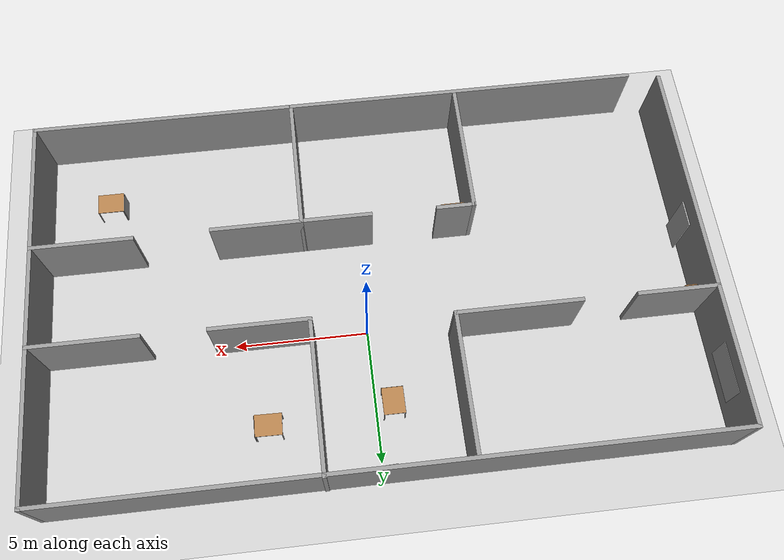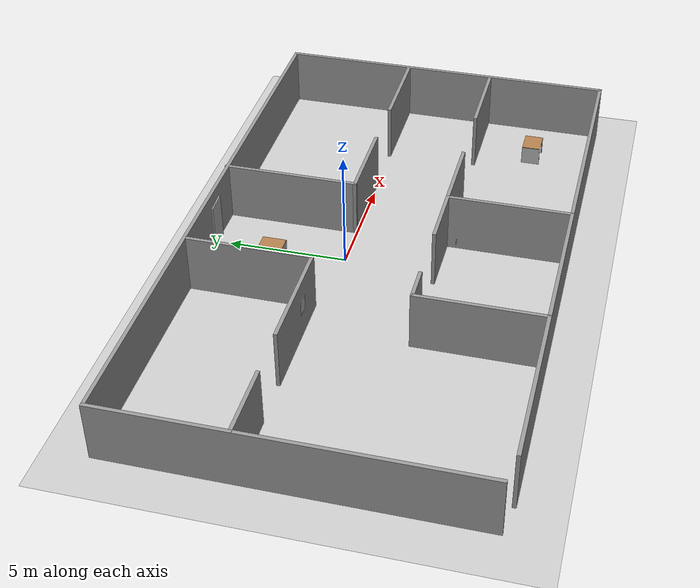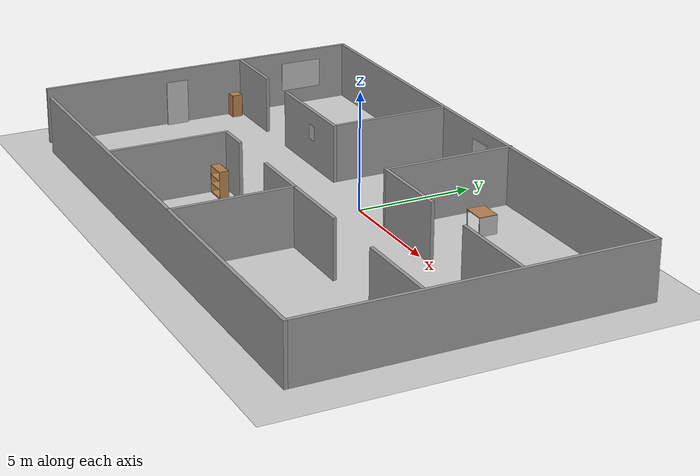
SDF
<sdf version="1.6">
 <world name="default">
  <light name="sun" type="directional">
   <pose>0 0 10 0 -0 0</pose>
   <diffuse>0.8 0.8 0.8 1</diffuse>
   <specular>0.2 0.2 0.2 1</specular>
   <attenuation>
    <range>1000</range>
    <constant>0.9</constant>
    <linear>0.01</linear>
    <quadratic>0.001</quadratic>
   </attenuation>
   <direction>-0.5 0.1 -0.9</direction>
  </light>
  <model name="ground_plane">
   <static>1</static>
   <link name="link">
    <collision name="collision">
     <geometry><plane><normal>0 0 1</normal><size>100 100</size></plane></geometry>
     <surface>
      <contact><collide_bitmask>65535</collide_bitmask></contact>
      <friction><ode><mu>100</mu><mu2>50</mu2></ode></friction>
     </surface>
    </collision>
    <visual name="visual">
     <cast_shadows>0</cast_shadows>
     <geometry><plane><normal>0 0 1</normal><size>100 100</size></plane></geometry>
     <material>
      <script><uri>file://media/materials/scripts/gazebo.material</uri><name>Gazebo/Grey</name></script>
     </material>
    </visual>
   </link>
  </model>
  <physics type="ode">
   <ode>
    <solver><type>quick</type><iters>20</iters><sor>1</sor></solver>
    <constraints>
     <cfm>0</cfm>
     <erp>0.2</erp>
     <contact_max_correcting_vel>100</contact_max_correcting_vel>
     <contact_surface_layer>0</contact_surface_layer>
    </constraints>
   </ode>
   <max_step_size>0.001</max_step_size>
   <real_time_update_rate>1000</real_time_update_rate>
  </physics>
  <scene><ambient>0.4 0.4 0.4 1</ambient><background>0.7 0.7 0.7 1</background><shadows>1</shadows></scene>
  <audio><device>default</device></audio>
  <spherical_coordinates>
   <surface_model>EARTH_WGS84</surface_model>
   <latitude_deg>0</latitude_deg>
   <longitude_deg>0</longitude_deg>
   <elevation>0</elevation>
   <heading_deg>0</heading_deg>
  </spherical_coordinates>
  <model name="table">
   <link name="wallWithREEMphoto_body">
    <inertial>
     <mass>4</mass>
     <inertia><ixx>1</ixx><ixy>0</ixy><ixz>0</ixz><iyy>1</iyy><iyz>0</iyz><izz>1</izz></inertia>
    </inertial>
    <collision name="collision"><geometry><box><size>0.05 1 2</size></box></geometry></collision>
    <visual name="visual">
     <geometry><box><size>0.05 1 2</size></box></geometry>
     <material>
      <script>
       <uri>model://wall_with_reem_photo/material/scripts</uri>
       <uri>model://wall_with_reem_photo/material/textures</uri>
       <name>Custom/REEM_photo0</name>
      </script>
     </material>
    </visual>
   </link>
   <pose>-12.5516 -2.77072 1 1e-06 7e-06 1.1e-05</pose>
  </model>
  <model name="cabinet">
   <static>1</static>
   <link name="cabinet_bottom_plate">
    <inertial>
     <pose>0 0 -1 0 -0 0</pose>
     <inertia><ixx>2.05</ixx><ixy>0</ixy><ixz>0</ixz><iyy>2.05</iyy><iyz>0</iyz><izz>2.05</izz></inertia>
     <mass>25</mass>
    </inertial>
    <collision name="cabinet_bottom_plate_geom">
     <pose>0 0 0.01 0 -0 0</pose>
     <geometry><box><size>0.45 0.45 0.02</size></box></geometry>
    </collision>
    <visual name="cabinet_bottom_plate_geom_visual">
     <pose>0 0 0.01 0 -0 0</pose>
     <geometry><box><size>0.45 0.45 0.02</size></box></geometry>
     <material>
      <script><uri>file://media/materials/scripts/gazebo.material</uri><name>Gazebo/Wood</name></script>
     </material>
    </visual>
    <collision name="cabinet_bottom_plate_geom_cabinet_back_plate">
     <pose>0.235 0 0.51 0 -0 0</pose>
     <geometry><box><size>0.02 0.45 1.02</size></box></geometry>
    </collision>
    <visual name="cabinet_bottom_plate_geom_cabinet_back_plate_visual">
     <pose>0.235 0 0.51 0 -0 0</pose>
     <geometry><box><size>0.02 0.45 1.02</size></box></geometry>
     <material>
      <script><uri>file://media/materials/scripts/gazebo.material</uri><name>Gazebo/Wood</name></script>
     </material>
    </visual>
    <collision name="cabinet_bottom_plate_geom_cabinet_left_plate">
     <pose>0 0.235 0.51 0 -0 0</pose>
     <geometry><box><size>0.45 0.02 1.02</size></box></geometry>
    </collision>
    <visual name="cabinet_bottom_plate_geom_cabinet_left_plate_visual">
     <pose>0 0.235 0.51 0 -0 0</pose>
     <geometry><box><size>0.45 0.02 1.02</size></box></geometry>
     <material>
      <script><uri>file://media/materials/scripts/gazebo.material</uri><name>Gazebo/Wood</name></script>
     </material>
    </visual>
    <collision name="cabinet_bottom_plate_geom_cabinet_middle_plate">
     <pose>0 0 0.51 0 -0 0</pose>
     <geometry><box><size>0.45 0.45 0.02</size></box></geometry>
    </collision>
    <visual name="cabinet_bottom_plate_geom_cabinet_middle_plate_visual">
     <pose>0 0 0.51 0 -0 0</pose>
     <geometry><box><size>0.45 0.45 0.02</size></box></geometry>
     <material>
      <script><uri>file://media/materials/scripts/gazebo.material</uri><name>Gazebo/Wood</name></script>
     </material>
    </visual>
    <collision name="cabinet_bottom_plate_geom_cabinet_right_plate">
     <pose>0 -0.235 0.51 0 -0 0</pose>
     <geometry><box><size>0.45 0.02 1.02</size></box></geometry>
    </collision>
    <visual name="cabinet_bottom_plate_geom_cabinet_right_plate_visual">
     <pose>0 -0.235 0.51 0 -0 0</pose>
     <geometry><box><size>0.45 0.02 1.02</size></box></geometry>
     <material>
      <script><uri>file://media/materials/scripts/gazebo.material</uri><name>Gazebo/Wood</name></script>
     </material>
    </visual>
    <collision name="cabinet_bottom_plate_geom_cabinet_top_plate">
     <pose>0 0 1.01 0 -0 0</pose>
     <geometry><box><size>0.45 0.45 0.02</size></box></geometry>
    </collision>
    <visual name="cabinet_bottom_plate_geom_cabinet_top_plate_visual">
     <pose>0 0 1.01 0 -0 0</pose>
     <geometry><box><size>0.45 0.45 0.02</size></box></geometry>
     <material>
      <script><uri>file://media/materials/scripts/gazebo.material</uri><name>Gazebo/Wood</name></script>
     </material>
    </visual>
   </link>
   <pose>-12.4241 0.007216 0 0 -0 0</pose>
  </model>
  <model name="aruco_board">
   <static>0</static>
   <link name="marker">
    <inertial>
     <mass>0.5</mass>
     <inertia><ixx>0</ixx><ixy>0</ixy><ixz>0</ixz><iyy>0</iyy><iyz>0</iyz><izz>0</izz></inertia>
    </inertial>
    <visual name="visual">
     <geometry><box><size>0.02 1.9 1.3</size></box></geometry>
     <material>
      <script>
       <uri>model://aruco_board/material/scripts</uri>
       <uri>model://aruco_board/material/textures</uri>
       <name>Aruco/aruco_board</name>
      </script>
     </material>
    </visual>
    <collision name="collision"><geometry><box><size>0.02 1.9 1.3</size></box></geometry></collision>
    <self_collide>1</self_collide>
    <gravity>0</gravity>
   </link>
   <pose>-12.6168 3.39827 1.37541 0 -0 0</pose>
  </model>
  <model name="bookshelf">
   <static>1</static>
   <link name="link">
    <inertial><mass>1</mass></inertial>
    <collision name="back">
     <pose>0 0.005 0.6 0 -0 0</pose>
     <geometry><box><size>0.9 0.01 1.2</size></box></geometry>
    </collision>
    <visual name="visual1">
     <pose>0 0.005 0.6 0 -0 0</pose>
     <geometry><box><size>0.9 0.01 1.2</size></box></geometry>
     <material>
      <script><uri>file://media/materials/scripts/gazebo.material</uri><name>Gazebo/Wood</name></script>
     </material>
    </visual>
    <collision name="left_side">
     <pose>0.45 -0.195 0.6 0 -0 0</pose>
     <geometry><box><size>0.02 0.4 1.2</size></box></geometry>
    </collision>
    <visual name="visual2">
     <pose>0.45 -0.195 0.6 0 -0 0</pose>
     <geometry><box><size>0.02 0.4 1.2</size></box></geometry>
     <material>
      <script><uri>file://media/materials/scripts/gazebo.material</uri><name>Gazebo/Wood</name></script>
     </material>
    </visual>
    <collision name="right_side">
     <pose>-0.45 -0.195 0.6 0 -0 0</pose>
     <geometry><box><size>0.02 0.4 1.2</size></box></geometry>
    </collision>
    <visual name="visual3">
     <pose>-0.45 -0.195 0.6 0 -0 0</pose>
     <geometry><box><size>0.02 0.4 1.2</size></box></geometry>
     <material>
      <script><uri>file://media/materials/scripts/gazebo.material</uri><name>Gazebo/Wood</name></script>
     </material>
    </visual>
    <collision name="bottom">
     <pose>0 -0.195 0.03 0 -0 0</pose>
     <geometry><box><size>0.88 0.4 0.06</size></box></geometry>
    </collision>
    <visual name="visual4">
     <pose>0 -0.195 0.03 0 -0 0</pose>
     <geometry><box><size>0.88 0.4 0.06</size></box></geometry>
     <material>
      <script><uri>file://media/materials/scripts/gazebo.material</uri><name>Gazebo/Wood</name></script>
     </material>
    </visual>
    <collision name="top">
     <pose>0 -0.195 1.19 0 -0 0</pose>
     <geometry><box><size>0.88 0.4 0.02</size></box></geometry>
    </collision>
    <visual name="visual5">
     <pose>0 -0.195 1.19 0 -0 0</pose>
     <geometry><box><size>0.88 0.4 0.02</size></box></geometry>
     <material>
      <script><uri>file://media/materials/scripts/gazebo.material</uri><name>Gazebo/Wood</name></script>
     </material>
    </visual>
    <collision name="low_shelf">
     <pose>0 -0.195 0.43 0 -0 0</pose>
     <geometry><box><size>0.88 0.4 0.02</size></box></geometry>
    </collision>
    <visual name="visual6">
     <pose>0 -0.195 0.43 0 -0 0</pose>
     <geometry><box><size>0.88 0.4 0.02</size></box></geometry>
     <material>
      <script><uri>file://media/materials/scripts/gazebo.material</uri><name>Gazebo/Wood</name></script>
     </material>
    </visual>
    <collision name="high_shelf">
     <pose>0 -0.195 0.8 0 -0 0</pose>
     <geometry><box><size>0.88 0.4 0.02</size></box></geometry>
    </collision>
    <visual name="visual7">
     <pose>0 -0.195 0.8 0 -0 0</pose>
     <geometry><box><size>0.88 0.4 0.02</size></box></geometry>
     <material>
      <script><uri>file://media/materials/scripts/gazebo.material</uri><name>Gazebo/Wood</name></script>
     </material>
    </visual>
   </link>
   <pose>-3.90759 -4.21207 0 0 -0 0</pose>
  </model>
  <model name="bifrutas_tropical_can_clone">
   <static>0</static>
   <link name="link">
    <inertial>
     <mass>0.25</mass>
     <inertia><ixx>0</ixx><ixy>0</ixy><ixz>0</ixz><iyy>0</iyy><iyz>0</iyz><izz>0</izz></inertia>
    </inertial>
    <collision name="collision">
     <geometry><cylinder><radius>0.025</radius><length>0.132</length></cylinder></geometry>
    </collision>
    <visual name="visual">
     <geometry><cylinder><radius>0.025</radius><length>0.132</length></cylinder></geometry>
     <material>
      <script>
       <uri>model://bifrutas_tropical_can/material/scripts</uri>
       <uri>model://bifrutas_tropical_can/material/textures</uri>
       <name>Custom/bifrutas_tropical_can</name>
      </script>
     </material>
    </visual>
    <velocity_decay><linear>0</linear><angular>0</angular></velocity_decay>
   </link>
   <pose>1.71192 -4.3283 0.586 0.000254 0.000291 0.000327</pose>
  </model>
  <model name="bifrutas_tropical_can_clone_clone">
   <static>0</static>
   <link name="link">
    <inertial>
     <mass>0.25</mass>
     <inertia><ixx>0</ixx><ixy>0</ixy><ixz>0</ixz><iyy>0</iyy><iyz>0</iyz><izz>0</izz></inertia>
    </inertial>
    <collision name="collision">
     <geometry><cylinder><radius>0.025</radius><length>0.132</length></cylinder></geometry>
    </collision>
    <visual name="visual">
     <geometry><cylinder><radius>0.025</radius><length>0.132</length></cylinder></geometry>
     <material>
      <script>
       <uri>model://bifrutas_tropical_can/material/scripts</uri>
       <uri>model://bifrutas_tropical_can/material/textures</uri>
       <name>Custom/bifrutas_tropical_can</name>
      </script>
     </material>
    </visual>
    <velocity_decay><linear>0</linear><angular>0</angular></velocity_decay>
   </link>
   <pose>1.5351 -4.33616 0.586005 -0.000126 0.000171 0.000124</pose>
  </model>
  <model name="pal_poster">
   <link name="link">
    <gravity>0</gravity>
    <inertial>
     <mass>0.4</mass>
     <inertia><ixx>1</ixx><ixy>0</ixy><ixz>0</ixz><iyy>1</iyy><iyz>0</iyz><izz>1</izz></inertia>
    </inertial>
    <collision name="collision"><geometry><box><size>0.02 0.5 0.644</size></box></geometry></collision>
    <visual name="visual">
     <geometry><box><size>0.02 0.5 0.644</size></box></geometry>
     <material>
      <script>
       <uri>model://pal_poster/material/scripts</uri>
       <uri>model://pal_poster/material/textures</uri>
       <name>Custom/pal_poster</name>
      </script>
     </material>
    </visual>
   </link>
   <pose>-5.00585 0.293354 1.58855 0 -0 1.55111</pose>
  </model>
  <model name="table_clone">
   <link name="wallWithREEMphoto_body">
    <inertial>
     <mass>4</mass>
     <inertia><ixx>1</ixx><ixy>0</ixy><ixz>0</ixz><iyy>1</iyy><iyz>0</iyz><izz>1</izz></inertia>
    </inertial>
    <collision name="collision"><geometry><box><size>0.05 1 2</size></box></geometry></collision>
    <visual name="visual">
     <geometry><box><size>0.05 1 2</size></box></geometry>
     <material>
      <script>
       <uri>model://wall_with_reem_photo/material/scripts</uri>
       <uri>model://wall_with_reem_photo/material/textures</uri>
       <name>Custom/REEM_photo0</name>
      </script>
     </material>
    </visual>
   </link>
   <pose>0.027504 5.51046 1 1e-06 0 1.6107</pose>
  </model>
  <model name="project_try">
   <link name="Wall_37">
    <pose>-12.4141 0.105245 0 0 -0 1.5708</pose>
    <visual name="Wall_37_Visual">
     <pose>0 0 1.25 0 -0 0</pose>
     <geometry><box><size>14.5 0.15 2.5</size></box></geometry>
     <material>
      <script><uri>file://media/materials/scripts/gazebo.material</uri><name>Gazebo/Grey</name></script>
      <ambient>1 1 1 1</ambient>
     </material>
     <meta><layer>0</layer></meta>
    </visual>
    <collision name="Wall_37_Collision">
     <pose>0 0 1.25 0 -0 0</pose>
     <geometry><box><size>14.5 0.15 2.5</size></box></geometry>
     <surface>
      <friction>
       <ode><mu>1</mu><mu2>1</mu2><fdir1>0 0 0</fdir1><slip1>0</slip1><slip2>0</slip2></ode>
       <torsional>
        <coefficient>1</coefficient>
        <patch_radius>0</patch_radius>
        <surface_radius>0</surface_radius>
        <use_patch_radius>1</use_patch_radius>
        <ode><slip>0</slip></ode>
       </torsional>
      </friction>
      <bounce><restitution_coefficient>0</restitution_coefficient><threshold>1e+06</threshold></bounce>
      <contact>
       <collide_without_contact>0</collide_without_contact>
       <collide_without_contact_bitmask>1</collide_without_contact_bitmask>
       <collide_bitmask>1</collide_bitmask>
       <ode>
        <soft_cfm>0</soft_cfm>
        <soft_erp>0.2</soft_erp>
        <kp>1e+13</kp>
        <kd>1</kd>
        <max_vel>0.01</max_vel>
        <min_depth>0</min_depth>
       </ode>
       <bullet>
        <split_impulse>1</split_impulse>
        <split_impulse_penetration_threshold>-0.01</split_impulse_penetration_threshold>
        <soft_cfm>0</soft_cfm>
        <soft_erp>0.2</soft_erp>
        <kp>1e+13</kp>
        <kd>1</kd>
       </bullet>
      </contact>
     </surface>
    </collision>
   </link>
   <link name="Wall_38">
    <pose>0.010884 7.28024 0 0 -0 0</pose>
    <visual name="Wall_38_Visual">
     <pose>0 0 1.25 0 -0 0</pose>
     <geometry><box><size>25 0.15 2.5</size></box></geometry>
     <material>
      <script><uri>file://media/materials/scripts/gazebo.material</uri><name>Gazebo/Grey</name></script>
      <ambient>1 1 1 1</ambient>
     </material>
     <meta><layer>0</layer></meta>
    </visual>
    <collision name="Wall_38_Collision">
     <pose>0 0 1.25 0 -0 0</pose>
     <geometry><box><size>25 0.15 2.5</size></box></geometry>
     <surface>
      <friction>
       <ode><mu>1</mu><mu2>1</mu2><fdir1>0 0 0</fdir1><slip1>0</slip1><slip2>0</slip2></ode>
       <torsional>
        <coefficient>1</coefficient>
        <patch_radius>0</patch_radius>
        <surface_radius>0</surface_radius>
        <use_patch_radius>1</use_patch_radius>
        <ode><slip>0</slip></ode>
       </torsional>
      </friction>
      <bounce><restitution_coefficient>0</restitution_coefficient><threshold>1e+06</threshold></bounce>
      <contact>
       <collide_without_contact>0</collide_without_contact>
       <collide_without_contact_bitmask>1</collide_without_contact_bitmask>
       <collide_bitmask>1</collide_bitmask>
       <ode>
        <soft_cfm>0</soft_cfm>
        <soft_erp>0.2</soft_erp>
        <kp>1e+13</kp>
        <kd>1</kd>
        <max_vel>0.01</max_vel>
        <min_depth>0</min_depth>
       </ode>
       <bullet>
        <split_impulse>1</split_impulse>
        <split_impulse_penetration_threshold>-0.01</split_impulse_penetration_threshold>
        <soft_cfm>0</soft_cfm>
        <soft_erp>0.2</soft_erp>
        <kp>1e+13</kp>
        <kd>1</kd>
       </bullet>
      </contact>
     </surface>
    </collision>
   </link>
   <link name="Wall_39">
    <pose>12.4359 -0.019755 0 0 0 -1.5708</pose>
    <visual name="Wall_39_Visual">
     <pose>0 0 1.25 0 -0 0</pose>
     <geometry><box><size>14.75 0.15 2.5</size></box></geometry>
     <material>
      <script><uri>file://media/materials/scripts/gazebo.material</uri><name>Gazebo/Grey</name></script>
      <ambient>1 1 1 1</ambient>
     </material>
     <meta><layer>0</layer></meta>
    </visual>
    <collision name="Wall_39_Collision">
     <pose>0 0 1.25 0 -0 0</pose>
     <geometry><box><size>14.75 0.15 2.5</size></box></geometry>
     <surface>
      <friction>
       <ode><mu>1</mu><mu2>1</mu2><fdir1>0 0 0</fdir1><slip1>0</slip1><slip2>0</slip2></ode>
       <torsional>
        <coefficient>1</coefficient>
        <patch_radius>0</patch_radius>
        <surface_radius>0</surface_radius>
        <use_patch_radius>1</use_patch_radius>
        <ode><slip>0</slip></ode>
       </torsional>
      </friction>
      <bounce><restitution_coefficient>0</restitution_coefficient><threshold>1e+06</threshold></bounce>
      <contact>
       <collide_without_contact>0</collide_without_contact>
       <collide_without_contact_bitmask>1</collide_without_contact_bitmask>
       <collide_bitmask>1</collide_bitmask>
       <ode>
        <soft_cfm>0</soft_cfm>
        <soft_erp>0.2</soft_erp>
        <kp>1e+13</kp>
        <kd>1</kd>
        <max_vel>0.01</max_vel>
        <min_depth>0</min_depth>
       </ode>
       <bullet>
        <split_impulse>1</split_impulse>
        <split_impulse_penetration_threshold>-0.01</split_impulse_penetration_threshold>
        <soft_cfm>0</soft_cfm>
        <soft_erp>0.2</soft_erp>
        <kp>1e+13</kp>
        <kd>1</kd>
       </bullet>
      </contact>
     </surface>
    </collision>
   </link>
   <link name="Wall_40">
    <pose>0.635884 -7.31976 0 0 -0 3.14159</pose>
    <visual name="Wall_40_Visual">
     <pose>0 0 1.25 0 -0 0</pose>
     <geometry><box><size>23.75 0.15 2.5</size></box></geometry>
     <material>
      <script><uri>file://media/materials/scripts/gazebo.material</uri><name>Gazebo/Grey</name></script>
      <ambient>1 1 1 1</ambient>
     </material>
     <meta><layer>0</layer></meta>
    </visual>
    <collision name="Wall_40_Collision">
     <pose>0 0 1.25 0 -0 0</pose>
     <geometry><box><size>23.75 0.15 2.5</size></box></geometry>
     <surface>
      <friction>
       <ode><mu>1</mu><mu2>1</mu2><fdir1>0 0 0</fdir1><slip1>0</slip1><slip2>0</slip2></ode>
       <torsional>
        <coefficient>1</coefficient>
        <patch_radius>0</patch_radius>
        <surface_radius>0</surface_radius>
        <use_patch_radius>1</use_patch_radius>
        <ode><slip>0</slip></ode>
       </torsional>
      </friction>
      <bounce><restitution_coefficient>0</restitution_coefficient><threshold>1e+06</threshold></bounce>
      <contact>
       <collide_without_contact>0</collide_without_contact>
       <collide_without_contact_bitmask>1</collide_without_contact_bitmask>
       <collide_bitmask>1</collide_bitmask>
       <ode>
        <soft_cfm>0</soft_cfm>
        <soft_erp>0.2</soft_erp>
        <kp>1e+13</kp>
        <kd>1</kd>
        <max_vel>0.01</max_vel>
        <min_depth>0</min_depth>
       </ode>
       <bullet>
        <split_impulse>1</split_impulse>
        <split_impulse_penetration_threshold>-0.01</split_impulse_penetration_threshold>
        <soft_cfm>0</soft_cfm>
        <soft_erp>0.2</soft_erp>
        <kp>1e+13</kp>
        <kd>1</kd>
       </bullet>
      </contact>
     </surface>
    </collision>
   </link>
   <link name="Wall_44">
    <pose>10.4604 1.69576 0 0 -0 3.14159</pose>
    <inertial>
     <inertia><ixx>0</ixx><ixy>0</ixy><ixz>0</ixz><iyy>0</iyy><iyz>0</iyz><izz>0</izz></inertia>
     <mass>0</mass>
    </inertial>
    <visual name="Wall_44_Visual">
     <pose>0 0 1.25 0 -0 0</pose>
     <geometry><box><size>4.09181 0.15 2.5</size></box></geometry>
     <material>
      <script><uri>file://media/materials/scripts/gazebo.material</uri><name>Gazebo/Grey</name></script>
      <ambient>1 1 1 1</ambient>
     </material>
     <meta><layer>0</layer></meta>
    </visual>
    <collision name="Wall_44_Collision">
     <pose>0 0 1.25 0 -0 0</pose>
     <geometry><box><size>4.09181 0.15 2.5</size></box></geometry>
     <surface>
      <friction>
       <ode><mu>1</mu><mu2>1</mu2><fdir1>0 0 0</fdir1><slip1>0</slip1><slip2>0</slip2></ode>
       <torsional>
        <coefficient>1</coefficient>
        <patch_radius>0</patch_radius>
        <surface_radius>0</surface_radius>
        <use_patch_radius>1</use_patch_radius>
        <ode><slip>0</slip></ode>
       </torsional>
      </friction>
      <bounce><restitution_coefficient>0</restitution_coefficient><threshold>1e+06</threshold></bounce>
      <contact>
       <collide_without_contact>0</collide_without_contact>
       <collide_without_contact_bitmask>1</collide_without_contact_bitmask>
       <collide_bitmask>1</collide_bitmask>
       <ode>
        <soft_cfm>0</soft_cfm>
        <soft_erp>0.2</soft_erp>
        <kp>1e+13</kp>
        <kd>1</kd>
        <max_vel>0.01</max_vel>
        <min_depth>0</min_depth>
       </ode>
       <bullet>
        <split_impulse>1</split_impulse>
        <split_impulse_penetration_threshold>-0.01</split_impulse_penetration_threshold>
        <soft_cfm>0</soft_cfm>
        <soft_erp>0.2</soft_erp>
        <kp>1e+13</kp>
        <kd>1</kd>
       </bullet>
      </contact>
     </surface>
    </collision>
   </link>
   <link name="Wall_46">
    <pose>4.19705 1.71976 0 0 -0 3.14159</pose>
    <visual name="Wall_46_Visual">
     <pose>0 0 1.25 0 -0 0</pose>
     <geometry><box><size>3.75 0.15 2.5</size></box></geometry>
     <material>
      <script><uri>file://media/materials/scripts/gazebo.material</uri><name>Gazebo/Grey</name></script>
      <ambient>1 1 1 1</ambient>
     </material>
     <meta><layer>0</layer></meta>
    </visual>
    <collision name="Wall_46_Collision">
     <pose>0 0 1.25 0 -0 0</pose>
     <geometry><box><size>3.75 0.15 2.5</size></box></geometry>
     <surface>
      <friction>
       <ode><mu>1</mu><mu2>1</mu2><fdir1>0 0 0</fdir1><slip1>0</slip1><slip2>0</slip2></ode>
       <torsional>
        <coefficient>1</coefficient>
        <patch_radius>0</patch_radius>
        <surface_radius>0</surface_radius>
        <use_patch_radius>1</use_patch_radius>
        <ode><slip>0</slip></ode>
       </torsional>
      </friction>
      <bounce><restitution_coefficient>0</restitution_coefficient><threshold>1e+06</threshold></bounce>
      <contact>
       <collide_without_contact>0</collide_without_contact>
       <collide_without_contact_bitmask>1</collide_without_contact_bitmask>
       <collide_bitmask>1</collide_bitmask>
       <ode>
        <soft_cfm>0</soft_cfm>
        <soft_erp>0.2</soft_erp>
        <kp>1e+13</kp>
        <kd>1</kd>
        <max_vel>0.01</max_vel>
        <min_depth>0</min_depth>
       </ode>
       <bullet>
        <split_impulse>1</split_impulse>
        <split_impulse_penetration_threshold>-0.01</split_impulse_penetration_threshold>
        <soft_cfm>0</soft_cfm>
        <soft_erp>0.2</soft_erp>
        <kp>1e+13</kp>
        <kd>1</kd>
       </bullet>
      </contact>
     </surface>
    </collision>
   </link>
   <link name="Wall_47">
    <pose>2.39705 4.51976 0 0 -0 1.5708</pose>
    <visual name="Wall_47_Visual">
     <pose>0 0 1.25 0 -0 0</pose>
     <geometry><box><size>5.75 0.15 2.5</size></box></geometry>
     <material>
      <script><uri>file://media/materials/scripts/gazebo.material</uri><name>Gazebo/Grey</name></script>
      <ambient>1 1 1 1</ambient>
     </material>
     <meta><layer>0</layer></meta>
    </visual>
    <collision name="Wall_47_Collision">
     <pose>0 0 1.25 0 -0 0</pose>
     <geometry><box><size>5.75 0.15 2.5</size></box></geometry>
     <surface>
      <friction>
       <ode><mu>1</mu><mu2>1</mu2><fdir1>0 0 0</fdir1><slip1>0</slip1><slip2>0</slip2></ode>
       <torsional>
        <coefficient>1</coefficient>
        <patch_radius>0</patch_radius>
        <surface_radius>0</surface_radius>
        <use_patch_radius>1</use_patch_radius>
        <ode><slip>0</slip></ode>
       </torsional>
      </friction>
      <bounce><restitution_coefficient>0</restitution_coefficient><threshold>1e+06</threshold></bounce>
      <contact>
       <collide_without_contact>0</collide_without_contact>
       <collide_without_contact_bitmask>1</collide_without_contact_bitmask>
       <collide_bitmask>1</collide_bitmask>
       <ode>
        <soft_cfm>0</soft_cfm>
        <soft_erp>0.2</soft_erp>
        <kp>1e+13</kp>
        <kd>1</kd>
        <max_vel>0.01</max_vel>
        <min_depth>0</min_depth>
       </ode>
       <bullet>
        <split_impulse>1</split_impulse>
        <split_impulse_penetration_threshold>-0.01</split_impulse_penetration_threshold>
        <soft_cfm>0</soft_cfm>
        <soft_erp>0.2</soft_erp>
        <kp>1e+13</kp>
        <kd>1</kd>
       </bullet>
      </contact>
     </surface>
    </collision>
   </link>
   <link name="Wall_49">
    <pose>2.39707 -4.75916 0 0 -0 1.5708</pose>
    <visual name="Wall_49_Visual">
     <pose>0 0 1.25 0 -0 0</pose>
     <geometry><box><size>5.25 0.15 2.5</size></box></geometry>
     <material>
      <script><uri>file://media/materials/scripts/gazebo.material</uri><name>Gazebo/Grey</name></script>
      <ambient>1 1 1 1</ambient>
     </material>
     <meta><layer>0</layer></meta>
    </visual>
    <collision name="Wall_49_Collision">
     <pose>0 0 1.25 0 -0 0</pose>
     <geometry><box><size>5.25 0.15 2.5</size></box></geometry>
     <surface>
      <friction>
       <ode><mu>1</mu><mu2>1</mu2><fdir1>0 0 0</fdir1><slip1>0</slip1><slip2>0</slip2></ode>
       <torsional>
        <coefficient>1</coefficient>
        <patch_radius>0</patch_radius>
        <surface_radius>0</surface_radius>
        <use_patch_radius>1</use_patch_radius>
        <ode><slip>0</slip></ode>
       </torsional>
      </friction>
      <bounce><restitution_coefficient>0</restitution_coefficient><threshold>1e+06</threshold></bounce>
      <contact>
       <collide_without_contact>0</collide_without_contact>
       <collide_without_contact_bitmask>1</collide_without_contact_bitmask>
       <collide_bitmask>1</collide_bitmask>
       <ode>
        <soft_cfm>0</soft_cfm>
        <soft_erp>0.2</soft_erp>
        <kp>1e+13</kp>
        <kd>1</kd>
        <max_vel>0.01</max_vel>
        <min_depth>0</min_depth>
       </ode>
       <bullet>
        <split_impulse>1</split_impulse>
        <split_impulse_penetration_threshold>-0.01</split_impulse_penetration_threshold>
        <soft_cfm>0</soft_cfm>
        <soft_erp>0.2</soft_erp>
        <kp>1e+13</kp>
        <kd>1</kd>
       </bullet>
      </contact>
     </surface>
    </collision>
   </link>
   <link name="Wall_50">
    <pose>4.07207 -2.20916 0 0 -0 0</pose>
    <visual name="Wall_50_Visual">
     <pose>0 0 1.25 0 -0 0</pose>
     <geometry><box><size>3.5 0.15 2.5</size></box></geometry>
     <material>
      <script><uri>file://media/materials/scripts/gazebo.material</uri><name>Gazebo/Grey</name></script>
      <ambient>1 1 1 1</ambient>
     </material>
     <meta><layer>0</layer></meta>
    </visual>
    <collision name="Wall_50_Collision">
     <pose>0 0 1.25 0 -0 0</pose>
     <geometry><box><size>3.5 0.15 2.5</size></box></geometry>
     <surface>
      <friction>
       <ode><mu>1</mu><mu2>1</mu2><fdir1>0 0 0</fdir1><slip1>0</slip1><slip2>0</slip2></ode>
       <torsional>
        <coefficient>1</coefficient>
        <patch_radius>0</patch_radius>
        <surface_radius>0</surface_radius>
        <use_patch_radius>1</use_patch_radius>
        <ode><slip>0</slip></ode>
       </torsional>
      </friction>
      <bounce><restitution_coefficient>0</restitution_coefficient><threshold>1e+06</threshold></bounce>
      <contact>
       <collide_without_contact>0</collide_without_contact>
       <collide_without_contact_bitmask>1</collide_without_contact_bitmask>
       <collide_bitmask>1</collide_bitmask>
       <ode>
        <soft_cfm>0</soft_cfm>
        <soft_erp>0.2</soft_erp>
        <kp>1e+13</kp>
        <kd>1</kd>
        <max_vel>0.01</max_vel>
        <min_depth>0</min_depth>
       </ode>
       <bullet>
        <split_impulse>1</split_impulse>
        <split_impulse_penetration_threshold>-0.01</split_impulse_penetration_threshold>
        <soft_cfm>0</soft_cfm>
        <soft_erp>0.2</soft_erp>
        <kp>1e+13</kp>
        <kd>1</kd>
       </bullet>
      </contact>
     </surface>
    </collision>
   </link>
   <link name="Wall_52">
    <pose>10.5672 -2.18977 0 0 -0 0</pose>
    <inertial>
     <inertia><ixx>0</ixx><ixy>0</ixy><ixz>0</ixz><iyy>0</iyy><iyz>0</iyz><izz>0</izz></inertia>
     <mass>0</mass>
    </inertial>
    <visual name="Wall_52_Visual">
     <pose>0 0 1.25 0 -0 0</pose>
     <geometry><box><size>3.87492 0.15 2.5</size></box></geometry>
     <material>
      <script><uri>file://media/materials/scripts/gazebo.material</uri><name>Gazebo/Grey</name></script>
      <ambient>1 1 1 1</ambient>
     </material>
     <meta><layer>0</layer></meta>
    </visual>
    <collision name="Wall_52_Collision">
     <pose>0 0 1.25 0 -0 0</pose>
     <geometry><box><size>3.87492 0.15 2.5</size></box></geometry>
     <surface>
      <friction>
       <ode><mu>1</mu><mu2>1</mu2><fdir1>0 0 0</fdir1><slip1>0</slip1><slip2>0</slip2></ode>
       <torsional>
        <coefficient>1</coefficient>
        <patch_radius>0</patch_radius>
        <surface_radius>0</surface_radius>
        <use_patch_radius>1</use_patch_radius>
        <ode><slip>0</slip></ode>
       </torsional>
      </friction>
      <bounce><restitution_coefficient>0</restitution_coefficient><threshold>1e+06</threshold></bounce>
      <contact>
       <collide_without_contact>0</collide_without_contact>
       <collide_without_contact_bitmask>1</collide_without_contact_bitmask>
       <collide_bitmask>1</collide_bitmask>
       <ode>
        <soft_cfm>0</soft_cfm>
        <soft_erp>0.2</soft_erp>
        <kp>1e+13</kp>
        <kd>1</kd>
        <max_vel>0.01</max_vel>
        <min_depth>0</min_depth>
       </ode>
       <bullet>
        <split_impulse>1</split_impulse>
        <split_impulse_penetration_threshold>-0.01</split_impulse_penetration_threshold>
        <soft_cfm>0</soft_cfm>
        <soft_erp>0.2</soft_erp>
        <kp>1e+13</kp>
        <kd>1</kd>
       </bullet>
      </contact>
     </surface>
    </collision>
   </link>
   <link name="Wall_56">
    <pose>-2.80643 4.61493 0 0 0 -1.5708</pose>
    <visual name="Wall_56_Visual">
     <pose>0 0 1.25 0 -0 0</pose>
     <geometry><box><size>5.25 0.15 2.5</size></box></geometry>
     <material>
      <script><uri>file://media/materials/scripts/gazebo.material</uri><name>Gazebo/Grey</name></script>
      <ambient>1 1 1 1</ambient>
     </material>
     <meta><layer>0</layer></meta>
    </visual>
    <collision name="Wall_56_Collision">
     <pose>0 0 1.25 0 -0 0</pose>
     <geometry><box><size>5.25 0.15 2.5</size></box></geometry>
     <surface>
      <friction>
       <ode><mu>1</mu><mu2>1</mu2><fdir1>0 0 0</fdir1><slip1>0</slip1><slip2>0</slip2></ode>
       <torsional>
        <coefficient>1</coefficient>
        <patch_radius>0</patch_radius>
        <surface_radius>0</surface_radius>
        <use_patch_radius>1</use_patch_radius>
        <ode><slip>0</slip></ode>
       </torsional>
      </friction>
      <bounce><restitution_coefficient>0</restitution_coefficient><threshold>1e+06</threshold></bounce>
      <contact>
       <collide_without_contact>0</collide_without_contact>
       <collide_without_contact_bitmask>1</collide_without_contact_bitmask>
       <collide_bitmask>1</collide_bitmask>
       <ode>
        <soft_cfm>0</soft_cfm>
        <soft_erp>0.2</soft_erp>
        <kp>1e+13</kp>
        <kd>1</kd>
        <max_vel>0.01</max_vel>
        <min_depth>0</min_depth>
       </ode>
       <bullet>
        <split_impulse>1</split_impulse>
        <split_impulse_penetration_threshold>-0.01</split_impulse_penetration_threshold>
        <soft_cfm>0</soft_cfm>
        <soft_erp>0.2</soft_erp>
        <kp>1e+13</kp>
        <kd>1</kd>
       </bullet>
      </contact>
     </surface>
    </collision>
   </link>
   <link name="Wall_57">
    <pose>-5.10643 2.06493 0 0 -0 3.14159</pose>
    <visual name="Wall_57_Visual">
     <pose>0 0 1.25 0 -0 0</pose>
     <geometry><box><size>4.75 0.15 2.5</size></box></geometry>
     <material>
      <script><uri>file://media/materials/scripts/gazebo.material</uri><name>Gazebo/Grey</name></script>
      <ambient>1 1 1 1</ambient>
     </material>
     <meta><layer>0</layer></meta>
    </visual>
    <collision name="Wall_57_Collision">
     <pose>0 0 1.25 0 -0 0</pose>
     <geometry><box><size>4.75 0.15 2.5</size></box></geometry>
     <surface>
      <friction>
       <ode><mu>1</mu><mu2>1</mu2><fdir1>0 0 0</fdir1><slip1>0</slip1><slip2>0</slip2></ode>
       <torsional>
        <coefficient>1</coefficient>
        <patch_radius>0</patch_radius>
        <surface_radius>0</surface_radius>
        <use_patch_radius>1</use_patch_radius>
        <ode><slip>0</slip></ode>
       </torsional>
      </friction>
      <bounce><restitution_coefficient>0</restitution_coefficient><threshold>1e+06</threshold></bounce>
      <contact>
       <collide_without_contact>0</collide_without_contact>
       <collide_without_contact_bitmask>1</collide_without_contact_bitmask>
       <collide_bitmask>1</collide_bitmask>
       <ode>
        <soft_cfm>0</soft_cfm>
        <soft_erp>0.2</soft_erp>
        <kp>1e+13</kp>
        <kd>1</kd>
        <max_vel>0.01</max_vel>
        <min_depth>0</min_depth>
       </ode>
       <bullet>
        <split_impulse>1</split_impulse>
        <split_impulse_penetration_threshold>-0.01</split_impulse_penetration_threshold>
        <soft_cfm>0</soft_cfm>
        <soft_erp>0.2</soft_erp>
        <kp>1e+13</kp>
        <kd>1</kd>
       </bullet>
      </contact>
     </surface>
    </collision>
   </link>
   <link name="Wall_59">
    <pose>-10.953 2.06614 0 0 -0 0</pose>
    <inertial>
     <inertia><ixx>0</ixx><ixy>0</ixy><ixz>0</ixz><iyy>0</iyy><iyz>0</iyz><izz>0</izz></inertia>
     <mass>0</mass>
    </inertial>
    <visual name="Wall_59_Visual">
     <pose>0 0 1.25 0 -0 0</pose>
     <geometry><box><size>3.05204 0.15 2.5</size></box></geometry>
     <material>
      <script><uri>file://media/materials/scripts/gazebo.material</uri><name>Gazebo/Grey</name></script>
      <ambient>1 1 1 1</ambient>
     </material>
     <meta><layer>0</layer></meta>
    </visual>
    <collision name="Wall_59_Collision">
     <pose>0 0 1.25 0 -0 0</pose>
     <geometry><box><size>3.05204 0.15 2.5</size></box></geometry>
     <surface>
      <friction>
       <ode><mu>1</mu><mu2>1</mu2><fdir1>0 0 0</fdir1><slip1>0</slip1><slip2>0</slip2></ode>
       <torsional>
        <coefficient>1</coefficient>
        <patch_radius>0</patch_radius>
        <surface_radius>0</surface_radius>
        <use_patch_radius>1</use_patch_radius>
        <ode><slip>0</slip></ode>
       </torsional>
      </friction>
      <bounce><restitution_coefficient>0</restitution_coefficient><threshold>1e+06</threshold></bounce>
      <contact>
       <collide_without_contact>0</collide_without_contact>
       <collide_without_contact_bitmask>1</collide_without_contact_bitmask>
       <collide_bitmask>1</collide_bitmask>
       <ode>
        <soft_cfm>0</soft_cfm>
        <soft_erp>0.2</soft_erp>
        <kp>1e+13</kp>
        <kd>1</kd>
        <max_vel>0.01</max_vel>
        <min_depth>0</min_depth>
       </ode>
       <bullet>
        <split_impulse>1</split_impulse>
        <split_impulse_penetration_threshold>-0.01</split_impulse_penetration_threshold>
        <soft_cfm>0</soft_cfm>
        <soft_erp>0.2</soft_erp>
        <kp>1e+13</kp>
        <kd>1</kd>
       </bullet>
      </contact>
     </surface>
    </collision>
   </link>
   <link name="Wall_62">
    <pose>-4.12806 -4.75102 0 0 -0 1.5708</pose>
    <inertial>
     <inertia><ixx>0</ixx><ixy>0</ixy><ixz>0</ixz><iyy>0</iyy><iyz>0</iyz><izz>0</izz></inertia>
     <mass>0</mass>
    </inertial>
    <visual name="Wall_62_Visual">
     <pose>0 0 1.25 0 -0 0</pose>
     <geometry><box><size>5.25913 0.15 2.5</size></box></geometry>
     <material>
      <script><uri>file://media/materials/scripts/gazebo.material</uri><name>Gazebo/Grey</name></script>
      <ambient>1 1 1 1</ambient>
     </material>
     <meta><layer>0</layer></meta>
    </visual>
    <collision name="Wall_62_Collision">
     <pose>0 0 1.25 0 -0 0</pose>
     <geometry><box><size>5.25913 0.15 2.5</size></box></geometry>
     <surface>
      <friction>
       <ode><mu>1</mu><mu2>1</mu2><fdir1>0 0 0</fdir1><slip1>0</slip1><slip2>0</slip2></ode>
       <torsional>
        <coefficient>1</coefficient>
        <patch_radius>0</patch_radius>
        <surface_radius>0</surface_radius>
        <use_patch_radius>1</use_patch_radius>
        <ode><slip>0</slip></ode>
       </torsional>
      </friction>
      <bounce><restitution_coefficient>0</restitution_coefficient><threshold>1e+06</threshold></bounce>
      <contact>
       <collide_without_contact>0</collide_without_contact>
       <collide_without_contact_bitmask>1</collide_without_contact_bitmask>
       <collide_bitmask>1</collide_bitmask>
       <ode>
        <soft_cfm>0</soft_cfm>
        <soft_erp>0.2</soft_erp>
        <kp>1e+13</kp>
        <kd>1</kd>
        <max_vel>0.01</max_vel>
        <min_depth>0</min_depth>
       </ode>
       <bullet>
        <split_impulse>1</split_impulse>
        <split_impulse_penetration_threshold>-0.01</split_impulse_penetration_threshold>
        <soft_cfm>0</soft_cfm>
        <soft_erp>0.2</soft_erp>
        <kp>1e+13</kp>
        <kd>1</kd>
       </bullet>
      </contact>
     </surface>
    </collision>
   </link>
   <link name="Wall_63">
    <pose>-3.43087 -2.19805 0 0 -0 0</pose>
    <inertial>
     <inertia><ixx>0</ixx><ixy>0</ixy><ixz>0</ixz><iyy>0</iyy><iyz>0</iyz><izz>0</izz></inertia>
     <mass>0</mass>
    </inertial>
    <visual name="Wall_63_Visual">
     <pose>0 0 1.25 0 -0 0</pose>
     <geometry><box><size>1.45855 0.15 2.5</size></box></geometry>
     <material>
      <script><uri>file://media/materials/scripts/gazebo.material</uri><name>Gazebo/Grey</name></script>
      <ambient>1 1 1 1</ambient>
     </material>
     <meta><layer>0</layer></meta>
    </visual>
    <collision name="Wall_63_Collision">
     <pose>0 0 1.25 0 -0 0</pose>
     <geometry><box><size>1.45855 0.15 2.5</size></box></geometry>
     <surface>
      <friction>
       <ode><mu>1</mu><mu2>1</mu2><fdir1>0 0 0</fdir1><slip1>0</slip1><slip2>0</slip2></ode>
       <torsional>
        <coefficient>1</coefficient>
        <patch_radius>0</patch_radius>
        <surface_radius>0</surface_radius>
        <use_patch_radius>1</use_patch_radius>
        <ode><slip>0</slip></ode>
       </torsional>
      </friction>
      <bounce><restitution_coefficient>0</restitution_coefficient><threshold>1e+06</threshold></bounce>
      <contact>
       <collide_without_contact>0</collide_without_contact>
       <collide_without_contact_bitmask>1</collide_without_contact_bitmask>
       <collide_bitmask>1</collide_bitmask>
       <ode>
        <soft_cfm>0</soft_cfm>
        <soft_erp>0.2</soft_erp>
        <kp>1e+13</kp>
        <kd>1</kd>
        <max_vel>0.01</max_vel>
        <min_depth>0</min_depth>
       </ode>
       <bullet>
        <split_impulse>1</split_impulse>
        <split_impulse_penetration_threshold>-0.01</split_impulse_penetration_threshold>
        <soft_cfm>0</soft_cfm>
        <soft_erp>0.2</soft_erp>
        <kp>1e+13</kp>
        <kd>1</kd>
       </bullet>
      </contact>
     </surface>
    </collision>
   </link>
   <link name="Wall_65">
    <pose>1.09707 -2.20916 0 0 -0 3.14159</pose>
    <visual name="Wall_65_Visual">
     <pose>0 0 1.25 0 -0 0</pose>
     <geometry><box><size>2.75 0.15 2.5</size></box></geometry>
     <material>
      <script><uri>file://media/materials/scripts/gazebo.material</uri><name>Gazebo/Grey</name></script>
      <ambient>1 1 1 1</ambient>
     </material>
     <meta><layer>0</layer></meta>
    </visual>
    <collision name="Wall_65_Collision">
     <pose>0 0 1.25 0 -0 0</pose>
     <geometry><box><size>2.75 0.15 2.5</size></box></geometry>
     <surface>
      <friction>
       <ode><mu>1</mu><mu2>1</mu2><fdir1>0 0 0</fdir1><slip1>0</slip1><slip2>0</slip2></ode>
       <torsional>
        <coefficient>1</coefficient>
        <patch_radius>0</patch_radius>
        <surface_radius>0</surface_radius>
        <use_patch_radius>1</use_patch_radius>
        <ode><slip>0</slip></ode>
       </torsional>
      </friction>
      <bounce><restitution_coefficient>0</restitution_coefficient><threshold>1e+06</threshold></bounce>
      <contact>
       <collide_without_contact>0</collide_without_contact>
       <collide_without_contact_bitmask>1</collide_without_contact_bitmask>
       <collide_bitmask>1</collide_bitmask>
       <ode>
        <soft_cfm>0</soft_cfm>
        <soft_erp>0.2</soft_erp>
        <kp>1e+13</kp>
        <kd>1</kd>
        <max_vel>0.01</max_vel>
        <min_depth>0</min_depth>
       </ode>
       <bullet>
        <split_impulse>1</split_impulse>
        <split_impulse_penetration_threshold>-0.01</split_impulse_penetration_threshold>
        <soft_cfm>0</soft_cfm>
        <soft_erp>0.2</soft_erp>
        <kp>1e+13</kp>
        <kd>1</kd>
       </bullet>
      </contact>
     </surface>
    </collision>
   </link>
   <static>1</static>
   <pose>-0.3546 -1.62183 0 0 -0 0</pose>
  </model>
  <model name="table_0">
   <static>1</static>
   <link name="link">
    <collision name="surface">
     <pose>0 0 0.8 0 -0 0</pose>
     <geometry><box><size>1 0.8 0.03</size></box></geometry>
    </collision>
    <visual name="visual1">
     <pose>0 0 0.8 0 -0 0</pose>
     <geometry><box><size>1 0.8 0.03</size></box></geometry>
     <material>
      <script><uri>file://media/materials/scripts/gazebo.material</uri><name>Gazebo/Wood</name></script>
     </material>
    </visual>
    <collision name="front_left_leg">
     <pose>0.48 0.38 0.4 0 -0 0</pose>
     <geometry><cylinder><radius>0.02</radius><length>0.8</length></cylinder></geometry>
    </collision>
    <visual name="front_left_leg">
     <pose>0.48 0.38 0.4 0 -0 0</pose>
     <geometry><cylinder><radius>0.02</radius><length>0.8</length></cylinder></geometry>
     <material>
      <script><uri>file://media/materials/scripts/gazebo.material</uri><name>Gazebo/Grey</name></script>
     </material>
    </visual>
    <collision name="front_right_leg">
     <pose>0.48 -0.38 0.4 0 -0 0</pose>
     <geometry><cylinder><radius>0.02</radius><length>0.8</length></cylinder></geometry>
    </collision>
    <visual name="front_right_leg">
     <pose>0.48 -0.38 0.4 0 -0 0</pose>
     <geometry><cylinder><radius>0.02</radius><length>0.8</length></cylinder></geometry>
     <material>
      <script><uri>file://media/materials/scripts/gazebo.material</uri><name>Gazebo/Grey</name></script>
     </material>
    </visual>
    <collision name="back_right_leg">
     <pose>-0.48 -0.38 0.4 0 -0 0</pose>
     <geometry><cylinder><radius>0.02</radius><length>0.8</length></cylinder></geometry>
    </collision>
    <visual name="back_right_leg">
     <pose>-0.48 -0.38 0.4 0 -0 0</pose>
     <geometry><cylinder><radius>0.02</radius><length>0.8</length></cylinder></geometry>
     <material>
      <script><uri>file://media/materials/scripts/gazebo.material</uri><name>Gazebo/Grey</name></script>
     </material>
    </visual>
    <collision name="back_left_leg">
     <pose>-0.48 0.38 0.4 0 -0 0</pose>
     <geometry><cylinder><radius>0.02</radius><length>0.8</length></cylinder></geometry>
    </collision>
    <visual name="back_left_leg">
     <pose>-0.48 0.38 0.4 0 -0 0</pose>
     <geometry><cylinder><radius>0.02</radius><length>0.8</length></cylinder></geometry>
     <material>
      <script><uri>file://media/materials/scripts/gazebo.material</uri><name>Gazebo/Grey</name></script>
     </material>
    </visual>
    <velocity_decay><linear>0</linear><angular>0</angular></velocity_decay>
   </link>
   <pose>-0.644751 2.94365 0 0 0 -1.571</pose>
  </model>
  <model name="table_1">
   <static>1</static>
   <link name="link">
    <collision name="surface">
     <pose>0 0 0.8 0 -0 0</pose>
     <geometry><box><size>1 0.8 0.03</size></box></geometry>
    </collision>
    <visual name="visual1">
     <pose>0 0 0.8 0 -0 0</pose>
     <geometry><box><size>1 0.8 0.03</size></box></geometry>
     <material>
      <script><uri>file://media/materials/scripts/gazebo.material</uri><name>Gazebo/Wood</name></script>
     </material>
    </visual>
    <collision name="front_left_leg">
     <pose>0.48 0.38 0.4 0 -0 0</pose>
     <geometry><cylinder><radius>0.02</radius><length>0.8</length></cylinder></geometry>
    </collision>
    <visual name="front_left_leg">
     <pose>0.48 0.38 0.4 0 -0 0</pose>
     <geometry><cylinder><radius>0.02</radius><length>0.8</length></cylinder></geometry>
     <material>
      <script><uri>file://media/materials/scripts/gazebo.material</uri><name>Gazebo/Grey</name></script>
     </material>
    </visual>
    <collision name="front_right_leg">
     <pose>0.48 -0.38 0.4 0 -0 0</pose>
     <geometry><cylinder><radius>0.02</radius><length>0.8</length></cylinder></geometry>
    </collision>
    <visual name="front_right_leg">
     <pose>0.48 -0.38 0.4 0 -0 0</pose>
     <geometry><cylinder><radius>0.02</radius><length>0.8</length></cylinder></geometry>
     <material>
      <script><uri>file://media/materials/scripts/gazebo.material</uri><name>Gazebo/Grey</name></script>
     </material>
    </visual>
    <collision name="back_right_leg">
     <pose>-0.48 -0.38 0.4 0 -0 0</pose>
     <geometry><cylinder><radius>0.02</radius><length>0.8</length></cylinder></geometry>
    </collision>
    <visual name="back_right_leg">
     <pose>-0.48 -0.38 0.4 0 -0 0</pose>
     <geometry><cylinder><radius>0.02</radius><length>0.8</length></cylinder></geometry>
     <material>
      <script><uri>file://media/materials/scripts/gazebo.material</uri><name>Gazebo/Grey</name></script>
     </material>
    </visual>
    <collision name="back_left_leg">
     <pose>-0.48 0.38 0.4 0 -0 0</pose>
     <geometry><cylinder><radius>0.02</radius><length>0.8</length></cylinder></geometry>
    </collision>
    <visual name="back_left_leg">
     <pose>-0.48 0.38 0.4 0 -0 0</pose>
     <geometry><cylinder><radius>0.02</radius><length>0.8</length></cylinder></geometry>
     <material>
      <script><uri>file://media/materials/scripts/gazebo.material</uri><name>Gazebo/Grey</name></script>
     </material>
    </visual>
    <velocity_decay><linear>0</linear><angular>0</angular></velocity_decay>
   </link>
   <pose>3.92268 3.33948 0 0 -0 3.12279</pose>
  </model>
  <model name="table_2">
   <static>1</static>
   <link name="link">
    <collision name="surface">
     <pose>0 0 0.8 0 -0 0</pose>
     <geometry><box><size>1 0.8 0.03</size></box></geometry>
    </collision>
    <visual name="visual1">
     <pose>0 0 0.8 0 -0 0</pose>
     <geometry><box><size>1 0.8 0.03</size></box></geometry>
     <material>
      <script><uri>file://media/materials/scripts/gazebo.material</uri><name>Gazebo/Wood</name></script>
     </material>
    </visual>
    <collision name="front_left_leg">
     <pose>0.48 0.38 0.4 0 -0 0</pose>
     <geometry><cylinder><radius>0.02</radius><length>0.8</length></cylinder></geometry>
    </collision>
    <visual name="front_left_leg">
     <pose>0.48 0.38 0.4 0 -0 0</pose>
     <geometry><cylinder><radius>0.02</radius><length>0.8</length></cylinder></geometry>
     <material>
      <script><uri>file://media/materials/scripts/gazebo.material</uri><name>Gazebo/Grey</name></script>
     </material>
    </visual>
    <collision name="front_right_leg">
     <pose>0.48 -0.38 0.4 0 -0 0</pose>
     <geometry><cylinder><radius>0.02</radius><length>0.8</length></cylinder></geometry>
    </collision>
    <visual name="front_right_leg">
     <pose>0.48 -0.38 0.4 0 -0 0</pose>
     <geometry><cylinder><radius>0.02</radius><length>0.8</length></cylinder></geometry>
     <material>
      <script><uri>file://media/materials/scripts/gazebo.material</uri><name>Gazebo/Grey</name></script>
     </material>
    </visual>
    <collision name="back_right_leg">
     <pose>-0.48 -0.38 0.4 0 -0 0</pose>
     <geometry><cylinder><radius>0.02</radius><length>0.8</length></cylinder></geometry>
    </collision>
    <visual name="back_right_leg">
     <pose>-0.48 -0.38 0.4 0 -0 0</pose>
     <geometry><cylinder><radius>0.02</radius><length>0.8</length></cylinder></geometry>
     <material>
      <script><uri>file://media/materials/scripts/gazebo.material</uri><name>Gazebo/Grey</name></script>
     </material>
    </visual>
    <collision name="back_left_leg">
     <pose>-0.48 0.38 0.4 0 -0 0</pose>
     <geometry><cylinder><radius>0.02</radius><length>0.8</length></cylinder></geometry>
    </collision>
    <visual name="back_left_leg">
     <pose>-0.48 0.38 0.4 0 -0 0</pose>
     <geometry><cylinder><radius>0.02</radius><length>0.8</length></cylinder></geometry>
     <material>
      <script><uri>file://media/materials/scripts/gazebo.material</uri><name>Gazebo/Grey</name></script>
     </material>
    </visual>
    <velocity_decay><linear>0</linear><angular>0</angular></velocity_decay>
   </link>
   <pose>9.55605 -6.32184 0 0 -0 0</pose>
  </model>
  <model name="marker26_8cm">
   <static>0</static>
   <link name="marker">
    <inertial>
     <mass>0.1</mass>
     <inertia><ixx>0</ixx><ixy>0</ixy><ixz>0</ixz><iyy>0</iyy><iyz>0</iyz><izz>0</izz></inertia>
    </inertial>
    <visual name="visual">
     <geometry><box><size>0.8 0.8 0.001</size></box></geometry>
     <material>
      <script>
       <uri>model://marker26_8cm/material/scripts</uri>
       <uri>model://marker26_8cm/material/textures</uri>
       <name>Aruco/marker26_8cm</name>
      </script>
     </material>
    </visual>
    <collision name="collision"><geometry><box><size>0.8 0.8 0.02</size></box></geometry></collision>
    <self_collide>1</self_collide>
   </link>
   <pose>-0.644713 2.4334 0.400007 1.59964 1.57078 -3.11345</pose>
  </model>
  <model name="marker26_8cm_1">
   <static>0</static>
   <link name="marker">
    <inertial>
     <mass>0.1</mass>
     <inertia><ixx>0</ixx><ixy>0</ixy><ixz>0</ixz><iyy>0</iyy><iyz>0</iyz><izz>0</izz></inertia>
    </inertial>
    <visual name="visual">
     <geometry><box><size>0.8 0.8 0.001</size></box></geometry>
     <material>
      <script>
       <uri>model://marker26_8cm/material/scripts</uri>
       <uri>model://marker26_8cm/material/textures</uri>
       <name>Aruco/marker26_8cm</name>
      </script>
     </material>
    </visual>
    <collision name="collision"><geometry><box><size>0.8 0.8 0.02</size></box></geometry></collision>
    <self_collide>1</self_collide>
   </link>
   <pose>9.04329 -6.31567 0.400008 -1.55032 1.57078 -1.55032</pose>
  </model>
  <model name="marker26_8cm_clone">
   <static>0</static>
   <link name="marker">
    <inertial>
     <mass>0.1</mass>
     <inertia><ixx>0</ixx><ixy>0</ixy><ixz>0</ixz><iyy>0</iyy><iyz>0</iyz><izz>0</izz></inertia>
    </inertial>
    <visual name="visual">
     <geometry><box><size>0.8 0.8 0.001</size></box></geometry>
     <material>
      <script>
       <uri>model://marker26_8cm/material/scripts</uri>
       <uri>model://marker26_8cm/material/textures</uri>
       <name>Aruco/marker26_8cm</name>
      </script>
     </material>
    </visual>
    <collision name="collision"><geometry><box><size>0.8 0.8 0.02</size></box></geometry></collision>
    <self_collide>1</self_collide>
   </link>
   <pose>4.43849 3.33638 0.400002 -0.003863 1.57062 3.13378</pose>
  </model>
 </world>
</sdf>
